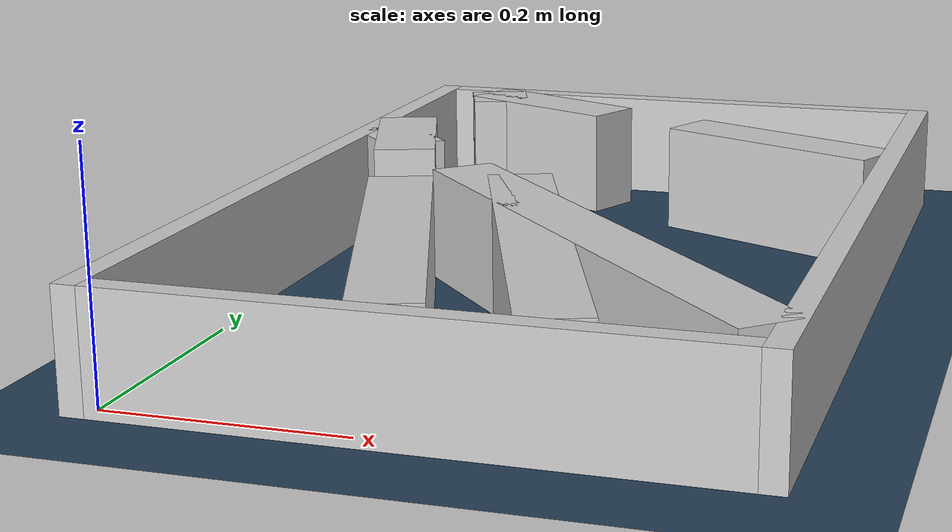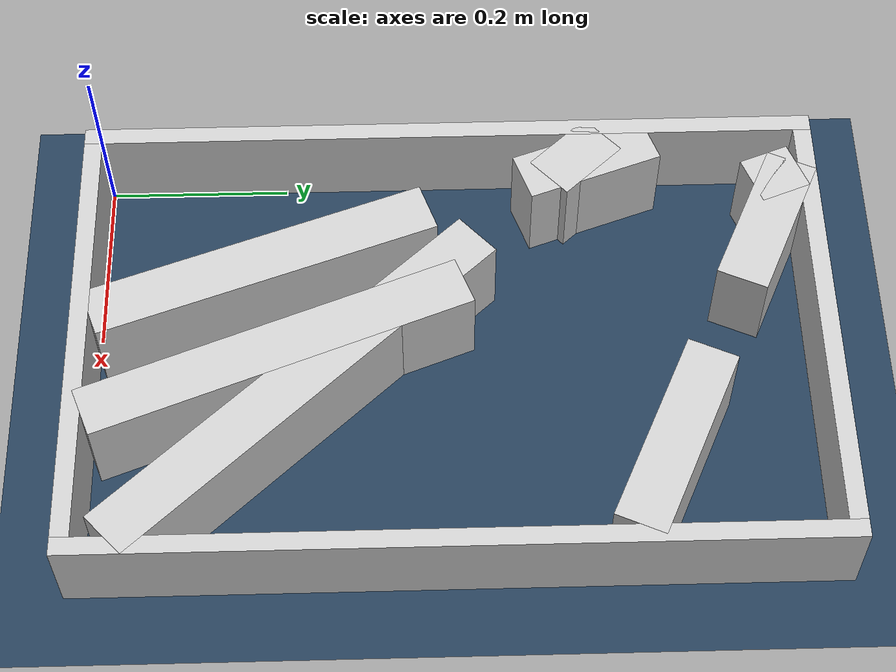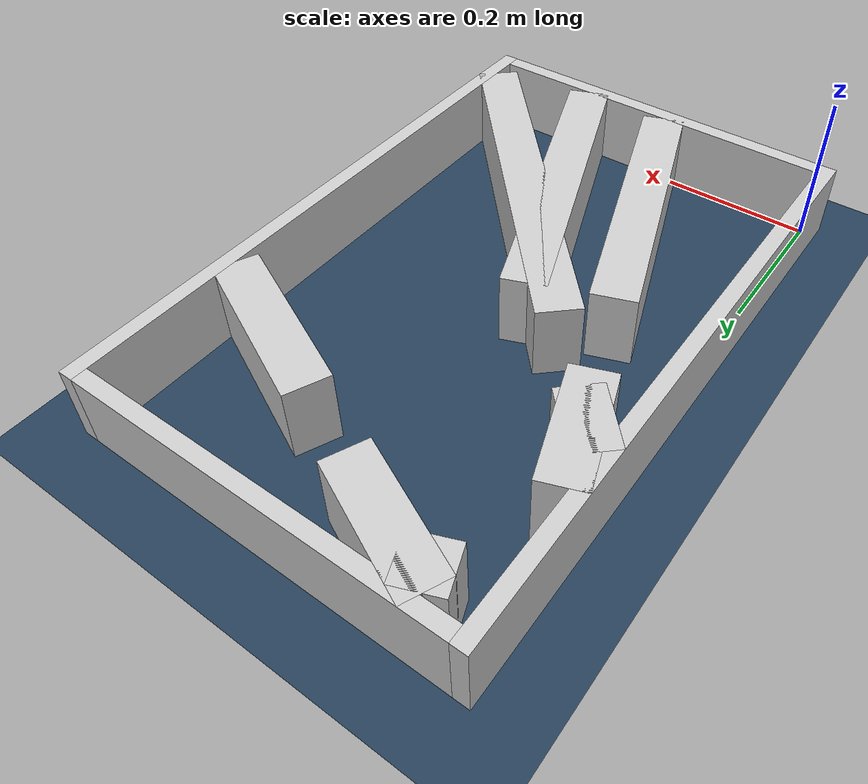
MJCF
<?xml version="1.0" ?>
<mujoco model="generated_real_template">
  <compiler angle="degree"/>
  <option timestep="0.002" integrator="implicitfast" iterations="100" cone="elliptic"/>
  <default>
    <geom density="1"/>
  </default>
  <asset>
    <texture builtin="gradient" height="3072" rgb1="0.3 0.5 0.7" rgb2="0 0 0" type="skybox" width="512"/>
    <texture builtin="checker" height="300" mark="edge" markrgb="0.8 0.8 0.8" name="groundplane" rgb1="0.2 0.3 0.4" rgb2="0.1 0.2 0.3" type="2d" width="300"/>
    <material name="groundplane" reflectance="0.2" texrepeat="5 5" texture="groundplane" texuniform="true"/>
  </asset>
  <worldbody>
    <light dir="0 0 -1" directional="true" pos="0 0 1.5"/>
    <geom name="floor" type="plane" condim="4" friction="0.5 0.005 0.001" material="groundplane" size="0 0 0.05"/>
    <body name="walls">
      <geom name="wall_boundary_left" type="box" condim="4" friction="1.0 0.005 0.0001" rgba="0.8 0.8 0.8 1" pos="-0.010000 0.387500 0.050000" euler="0 0 0.000000" size="0.010000 0.407500 0.050000"/>
      <geom name="wall_boundary_right" type="box" condim="4" friction="1.0 0.005 0.0001" rgba="0.8 0.8 0.8 1" pos="0.500000 0.387500 0.050000" euler="0 0 0.000000" size="0.010000 0.407500 0.050000"/>
      <geom name="wall_boundary_bottom" type="box" condim="4" friction="1.0 0.005 0.0001" rgba="0.8 0.8 0.8 1" pos="0.245000 -0.010000 0.050000" euler="0 0 0.000000" size="0.245000 0.010000 0.050000"/>
      <geom name="wall_boundary_top" type="box" condim="4" friction="1.0 0.005 0.0001" rgba="0.8 0.8 0.8 1" pos="0.245000 0.785000 0.050000" euler="0 0 0.000000" size="0.245000 0.010000 0.050000"/>
      <geom name="wall_inner_1_1" type="box" condim="4" friction="1.0 0.005 0.0001" rgba="0.8 0.8 0.8 1" pos="0.032763 0.540764 0.050000" euler="0 0 -70.411752" size="0.077287 0.028500 0.050000"/>
      <geom name="wall_inner_1_2" type="box" condim="4" friction="1.0 0.005 0.0001" rgba="0.8 0.8 0.8 1" pos="0.160543 0.181681 0.050000" euler="0 0 -70.411752" size="0.192842 0.028500 0.050000"/>
      <geom name="wall_inner_2_1" type="box" condim="4" friction="1.0 0.005 0.0001" rgba="0.8 0.8 0.8 1" pos="0.060216 0.748246 0.050000" euler="0 0 -68.986587" size="0.028660 0.028500 0.050000"/>
      <geom name="wall_inner_2_2" type="box" condim="4" friction="1.0 0.005 0.0001" rgba="0.8 0.8 0.8 1" pos="0.270713 0.200267 0.050000" euler="0 0 -68.986587" size="0.214534 0.028500 0.050000"/>
      <geom name="wall_inner_3_1" type="box" condim="4" friction="1.0 0.005 0.0001" rgba="0.8 0.8 0.8 1" pos="0.388032 0.613063 0.050000" euler="0 0 155.673615" size="0.111904 0.028500 0.050000"/>
      <geom name="wall_inner_3_2" type="box" condim="4" friction="1.0 0.005 0.0001" rgba="0.8 0.8 0.8 1" pos="0.121733 0.733449 0.050000" euler="0 0 155.673615" size="0.086375 0.028500 0.050000"/>
      <geom name="wall_inner_4_1" type="box" condim="4" friction="1.0 0.005 0.0001" rgba="0.8 0.8 0.8 1" pos="0.030302 0.528885 0.050000" euler="0 0 -47.282660" size="0.043282 0.028500 0.050000"/>
      <geom name="wall_inner_4_2" type="box" condim="4" friction="1.0 0.005 0.0001" rgba="0.8 0.8 0.8 1" pos="0.311698 0.224124 0.050000" euler="0 0 -47.282660" size="0.261448 0.028500 0.050000"/>
    </body>
  </worldbody>
</mujoco>
